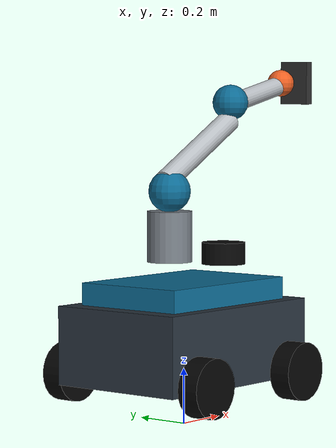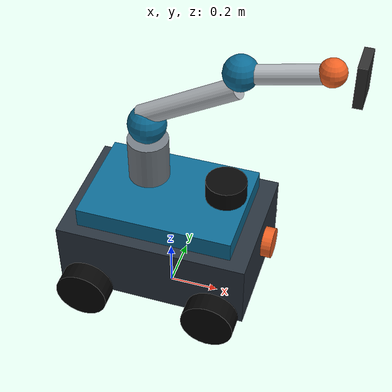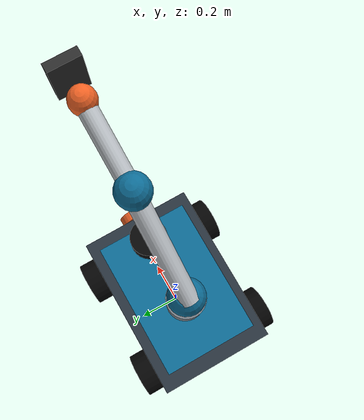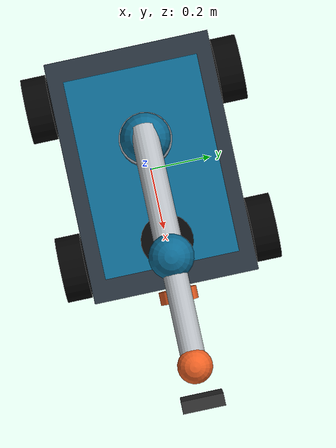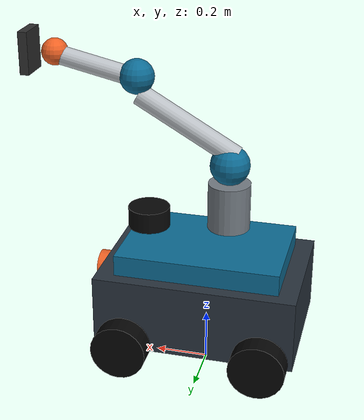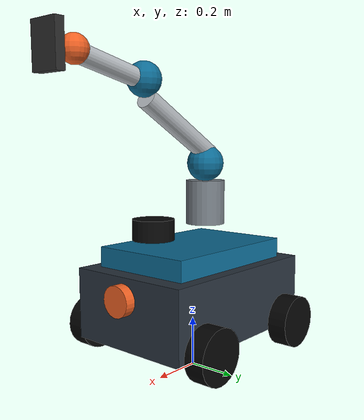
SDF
<?xml version="1.0"?>
<sdf version="1.7">
  <model name="mecanum730_xms5_placeholder">
    <static>true</static>
    <link name="base_link">
      <pose>0 0 0 0 0 0</pose>
      <inertial>
        <mass>45.0</mass>
        <inertia>
          <ixx>2.0</ixx>
          <iyy>2.0</iyy>
          <izz>2.0</izz>
          <ixy>0.0</ixy>
          <ixz>0.0</ixz>
          <iyz>0.0</iyz>
        </inertia>
      </inertial>

      <collision name="base_collision">
        <pose>0 0 0.30 0 0 0</pose>
        <geometry>
          <box>
            <size>0.76 0.52 0.32</size>
          </box>
        </geometry>
      </collision>

      <visual name="chassis">
        <pose>0 0 0.30 0 0 0</pose>
        <geometry>
          <box>
            <size>0.76 0.52 0.28</size>
          </box>
        </geometry>
        <material>
          <ambient>0.16 0.20 0.24 1</ambient>
          <diffuse>0.16 0.20 0.24 1</diffuse>
        </material>
      </visual>

      <visual name="top_plate">
        <pose>0 0 0.48 0 0 0</pose>
        <geometry>
          <box>
            <size>0.62 0.42 0.08</size>
          </box>
        </geometry>
        <material>
          <ambient>0.05 0.42 0.58 1</ambient>
          <diffuse>0.05 0.42 0.58 1</diffuse>
        </material>
      </visual>

      <visual name="front_marker">
        <pose>0.41 0 0.36 0 1.5708 0</pose>
        <geometry>
          <cylinder>
            <radius>0.06</radius>
            <length>0.04</length>
          </cylinder>
        </geometry>
        <material>
          <ambient>0.93 0.38 0.14 1</ambient>
          <diffuse>0.93 0.38 0.14 1</diffuse>
        </material>
      </visual>

      <visual name="lidar">
        <pose>0.23 0 0.60 0 0 0</pose>
        <geometry>
          <cylinder>
            <radius>0.08</radius>
            <length>0.08</length>
          </cylinder>
        </geometry>
        <material>
          <ambient>0.03 0.03 0.03 1</ambient>
          <diffuse>0.03 0.03 0.03 1</diffuse>
        </material>
      </visual>

      <sensor name="lidar_sensor" type="gpu_lidar">
        <pose>0.23 0 0.66 0 0 0</pose>
        <topic>/scan</topic>
        <update_rate>10</update_rate>
        <always_on>true</always_on>
        <visualize>true</visualize>
        <lidar>
          <scan>
            <horizontal>
              <samples>1081</samples>
              <resolution>1</resolution>
              <min_angle>-2.35619</min_angle>
              <max_angle>2.35619</max_angle>
            </horizontal>
          </scan>
          <range>
            <min>0.05</min>
            <max>20.0</max>
            <resolution>0.01</resolution>
          </range>
          <noise>
            <type>gaussian</type>
            <mean>0.0</mean>
            <stddev>0.01</stddev>
          </noise>
        </lidar>
      </sensor>

      <visual name="wheel_front_left">
        <pose>0.26 0.31 0.19 1.5708 0 0</pose>
        <geometry>
          <cylinder>
            <radius>0.105</radius>
            <length>0.08</length>
          </cylinder>
        </geometry>
        <material>
          <ambient>0.02 0.02 0.02 1</ambient>
          <diffuse>0.02 0.02 0.02 1</diffuse>
        </material>
      </visual>

      <visual name="wheel_front_right">
        <pose>0.26 -0.31 0.19 1.5708 0 0</pose>
        <geometry>
          <cylinder>
            <radius>0.105</radius>
            <length>0.08</length>
          </cylinder>
        </geometry>
        <material>
          <ambient>0.02 0.02 0.02 1</ambient>
          <diffuse>0.02 0.02 0.02 1</diffuse>
        </material>
      </visual>

      <visual name="wheel_rear_left">
        <pose>-0.26 0.31 0.19 1.5708 0 0</pose>
        <geometry>
          <cylinder>
            <radius>0.105</radius>
            <length>0.08</length>
          </cylinder>
        </geometry>
        <material>
          <ambient>0.02 0.02 0.02 1</ambient>
          <diffuse>0.02 0.02 0.02 1</diffuse>
        </material>
      </visual>

      <visual name="wheel_rear_right">
        <pose>-0.26 -0.31 0.19 1.5708 0 0</pose>
        <geometry>
          <cylinder>
            <radius>0.105</radius>
            <length>0.08</length>
          </cylinder>
        </geometry>
        <material>
          <ambient>0.02 0.02 0.02 1</ambient>
          <diffuse>0.02 0.02 0.02 1</diffuse>
        </material>
      </visual>

      <visual name="arm_base">
        <pose>-0.08 0 0.68 0 0 0</pose>
        <geometry>
          <cylinder>
            <radius>0.08</radius>
            <length>0.18</length>
          </cylinder>
        </geometry>
        <material>
          <ambient>0.46 0.49 0.52 1</ambient>
          <diffuse>0.46 0.49 0.52 1</diffuse>
        </material>
      </visual>

      <visual name="arm_shoulder">
        <pose>-0.08 0 0.84 0 0 0</pose>
        <geometry>
          <sphere>
            <radius>0.075</radius>
          </sphere>
        </geometry>
        <material>
          <ambient>0.05 0.42 0.58 1</ambient>
          <diffuse>0.05 0.42 0.58 1</diffuse>
        </material>
      </visual>

      <visual name="arm_upper">
        <pose>0.08 0 0.98 0 1.05 0</pose>
        <geometry>
          <cylinder>
            <radius>0.04</radius>
            <length>0.42</length>
          </cylinder>
        </geometry>
        <material>
          <ambient>0.72 0.74 0.76 1</ambient>
          <diffuse>0.72 0.74 0.76 1</diffuse>
        </material>
      </visual>

      <visual name="arm_elbow">
        <pose>0.27 0 1.15 0 0 0</pose>
        <geometry>
          <sphere>
            <radius>0.065</radius>
          </sphere>
        </geometry>
        <material>
          <ambient>0.05 0.42 0.58 1</ambient>
          <diffuse>0.05 0.42 0.58 1</diffuse>
        </material>
      </visual>

      <visual name="arm_forearm">
        <pose>0.43 0 1.18 0 1.35 0</pose>
        <geometry>
          <cylinder>
            <radius>0.035</radius>
            <length>0.34</length>
          </cylinder>
        </geometry>
        <material>
          <ambient>0.72 0.74 0.76 1</ambient>
          <diffuse>0.72 0.74 0.76 1</diffuse>
        </material>
      </visual>

      <visual name="wrist">
        <pose>0.58 0 1.22 0 0 0</pose>
        <geometry>
          <sphere>
            <radius>0.05</radius>
          </sphere>
        </geometry>
        <material>
          <ambient>0.93 0.38 0.14 1</ambient>
          <diffuse>0.93 0.38 0.14 1</diffuse>
        </material>
      </visual>

      <visual name="simple_gripper">
        <pose>0.68 0 1.22 0 1.5708 0</pose>
        <geometry>
          <box>
            <size>0.16 0.12 0.035</size>
          </box>
        </geometry>
        <material>
          <ambient>0.18 0.18 0.18 1</ambient>
          <diffuse>0.18 0.18 0.18 1</diffuse>
        </material>
      </visual>
    </link>
  </model>
</sdf>
